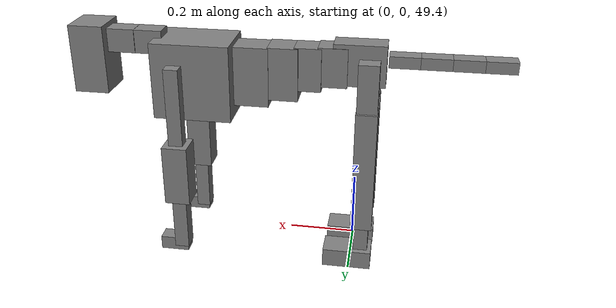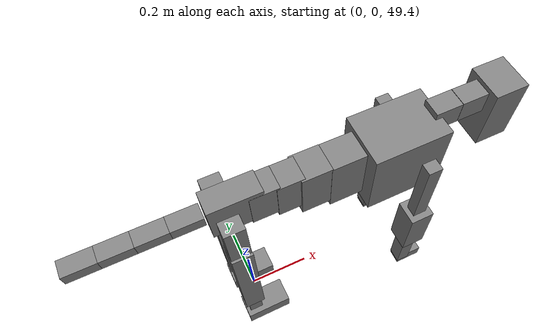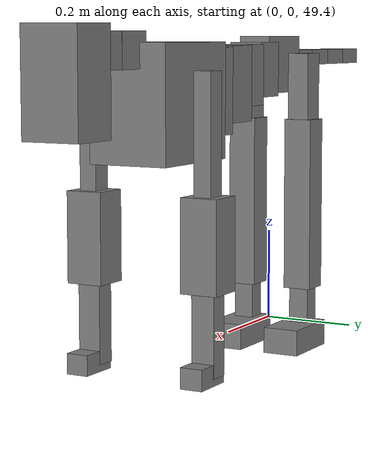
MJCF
<mujoco model="dog">

    <default>
        <joint armature="0.02" stiffness="1" damping="0.2" limited="true"/>
        <geom condim="3" friction="1 0.05 0.05" margin="0.01"/>
        <motor ctrllimited="true" ctrlrange="-1.0 1.0" forcelimited="true" gear="50"/>
    </default>

    <compiler inertiafromgeom="true" angle="radian"/>

    <option timestep="0.016" iterations="50" tolerance="1e-10" solver="Newton" jacobian="dense" cone="pyramidal"/>

    <size nconmax="20000" njmax="60000" nstack="5000000"/>
    <visual>
        <map force="0.1" zfar="30"/>
        <rgba haze="0.15 0.25 0.35 1"/>
        <quality shadowsize="2048"/>
        <global offwidth="800" offheight="800"/>
    </visual>

    <asset>
        <texture type="skybox" builtin="gradient" rgb1="0.3 0.5 0.7" rgb2="0 0 0" width="512" height="512"/>
        <texture name="texplane" type="2d" builtin="checker" rgb1=".2 .3 .4" rgb2=".1 0.15 0.2" width="512" height="512"
                 mark="cross" markrgb=".8 .8 .8"/>
        <texture name="texgeom" type="cube" builtin="flat" mark="cross" width="127" height="1278" rgb1="0.8 0.6 0.4"
                 rgb2="0.8 0.6 0.4" markrgb="1 1 1" random="0.01"/>

        <material name="matplane" reflectance="0.3" texture="texplane" texrepeat="1 1" texuniform="true"/>
        <material name="matgeom" texture="texgeom" texuniform="true" rgba="0.8 0.6 .4 1"/>
    </asset>

    <worldbody>
        <geom name="floor" pos="0 0 0" size="0 0 .25" type="plane" material="matplane" condim="3"/>

        <light directional="false" diffuse=".2 .2 .2" specular="0 0 0" pos="0 0 5" dir="0 0 -1" castshadow="false"/>
        <light mode="targetbodycom" target="torso" directional="false" diffuse=".8 .8 .8" specular="0.3 0.3 0.3"
               pos="0 0 4.0" dir="0 0 -1"/>

        <body name="root" pos="0 0 50">
            <freejoint name="root_1"/>
            <geom type="box" pos="0 0 -0.02" size="0.0774  0.0358  0.063" density="2030"/>

            <body name="spine1" pos="0.054 0 0">
                <joint name="spine1_y" axis="0 1 0" range="0 0.7" limited="true"/>
                <geom type="box" pos="0.02375 0 -0.03" size="0.04375  0.0375  0.05985" density="2030"/>

                <body name="spine2" pos="0.0612 0 0">
                    <joint name="spine2_y" axis="0 1 0" range="-0.15 0.15" limited="true"/>
                    <geom type="box" pos="0.03555  0  -0.04" size="0.04055  0.039  0.06615" density="2030"/>

                    <body name="spine3" pos="0.0730 0 0">
                        <joint name="spine3_y" axis="0 1 0" range="-0.15 0.15" limited="true"/>
                        <geom type="box" pos="0.03555  0  -0.057" size="0.04555  0.0445  0.081" density="2030"/>

                        <body name="spine4" pos="0.0780 0 0">
                            <joint name="spine4_y" axis="0 1 0" range="-0.15 0.15" limited="true"/>
                            <geom type="box" pos="0.05265  0  -0.07" size="0.05265  0.045  0.09135" density="2030"/>

                            <body name="torso" pos="0.1082 0 0">
                                <joint name="torso_y" axis="0 1 0" range="-0.15 0.15" limited="true"/>
                                <geom type="box" pos="0.11925  0  -0.085" size="0.11925  0.085  0.11745"
                                      density="2030"/>

                                <body name="neck1" pos="0.2160  0   0.0180">
                                    <joint name="neck1_y" axis="0 1 0" range="-1.2  -1" limited="true"/>
                                    <geom type="box" pos="0.0423  0  0" size="0.0423  0.03  0.036" density="2325"/>

                                    <body name="neck2" pos="0.0853  0  0">
                                        <joint name="neck2_y" axis="0 1 0" range="0.1  0" limited="true"/>
                                        <geom type="box" pos="0.0423  0  0" size="0.0423  0.03  0.036" density="2325"/>

                                        <body name="head" pos="0.0853  0  0">
                                            <joint name="head_y" axis="0 1 0" range="-0.3  -0.2" limited="true"/>
                                            <geom type="box" pos="0.0531  0  -0.055" size="0.0531  0.06  0.1044"
                                                  density="4030"/>

                                        </body>
                                    </body>
                                </body>

                                <body name="front_shoulder" pos="0.156  0   -0.0480">
                                    <joint name="front_shoulder_y" axis="0 1 0" range="-1 1.5" limited="true"/>
                                    <geom type="box" pos="0 0.13 -0.1070" size="0.0217  0.0185  0.1337" density="1158"/>
                                    <geom type="box" pos="0 -0.13 -0.1070" size="0.0217  0.0185  0.1337"
                                          density="1158"/>

                                    <body name="front_elbow" pos="0  0  -0.2141">
                                        <joint name="front_elbow_y" axis="0 1 0" range="-2 0" limited="true"/>
                                        <geom type="box" pos="0 0.13 -0.0933" size="0.0383  0.0392  0.0933"
                                              density="1081"/>
                                        <geom type="box" pos="0 -0.13 -0.0933" size="0.0383  0.0392  0.0933"
                                              density="1081"/>

                                        <body name="front_wrist" pos="0  0  -0.1866">
                                            <joint name="front_wrist_y" axis="0 1 0" range="-0.2 0" limited="true"/>
                                            <geom type="box" pos="0 0.13 -0.0756" size="0.0218  0.0242  0.0888"
                                                  density="1664"/>
                                            <geom type="box" pos="0 -0.13 -0.0756" size="0.0218  0.0242  0.0888"
                                                  density="1664"/>

                                            <body name="front_finger_end" pos="0  0  -0.1512">
                                                <joint name="front_finger_y" axis="0 1 0" range="-0.4 1"
                                                       limited="true"/>
                                                <geom type="box" pos="0.0237  0.13  -0.0061"
                                                      size="0.0435  0.0237  0.0211" density="1515"/>
                                                <geom type="box" pos="0.0237  -0.13  -0.0061"
                                                      size="0.0435  0.0237  0.0211" density="1515"/>

                                            </body>

                                        </body>
                                    </body>
                                </body>

                            </body>
                        </body>
                    </body>
                </body>
            </body>

            <body name="back_hip" pos="-0.03 0 -0.018">
                <joint name="back_hip_y" axis="0 1 0" range="-1.5 0.3" limited="true"/>
                <geom type="box" pos="0 0.07 -0.0704" size="0.0304  0.0239  0.0932" density="1154"/>
                <geom type="box" pos="0 -0.07 -0.0704" size="0.0304  0.0239  0.0932" density="1154"/>

                <body name="back_knee" pos="0  0  -0.1408">
                    <joint name="back_knee_y" axis="0 1 0" range="0 2.8" limited="true"/>
                    <geom type="box" pos="0 0.07 -0.1771" size="0.0322  0.0317  0.1926" density="1227"/>
                    <geom type="box" pos="0 -0.07 -0.1771" size="0.0322  0.0317  0.1926" density="1227"/>

                    <body name="back_ankle" pos="0  0  -0.3542">
                        <joint name="back_ankle_y" axis="0 1 0" range="-2.2 0" limited="true"/>
                        <geom type="box" pos="0 0.07 -0.0547" size="0.0222  0.0222  0.0660" density="1284"/>
                        <geom type="box" pos="0 -0.07 -0.0547" size="0.0222  0.0222  0.0660" density="1284"/>

                        <body name="back_toe_end" pos="0  0  -0.1095">
                            <joint name="back_toe_y" axis="0 1 0" range="-0.4 1" limited="true"/>
                            <geom type="box" pos="0.0407  0.07  -0.0136" size="0.0747  0.0407  0.0286" density="1515"/>
                            <geom type="box" pos="0.0407  -0.07  -0.0136" size="0.0747  0.0407  0.0286" density="1515"/>

                        </body>
                    </body>
                </body>
            </body>

            <body name="tail1" pos="-0.074 0 -0.006">
                <joint name="tail1_y" axis="0 1 0" range="-0.2 0.2" limited="true"/>
                <geom type="box" pos="-0.0536  0  0" size="0.045  0.025  0.0175" density="1587"/>

                <body name="tail2" pos="-0.09 0 0">
                    <joint name="tail2_y" axis="0 1 0" range="-0.2 0.2" limited="true"/>
                    <geom type="box" pos="-0.0536  0  0" size="0.045  0.025  0.0175" density="1587"/>

                    <body name="tail3" pos="-0.09 0 0">
                        <joint name="tail3_y" axis="0 1 0" range="-0.2 0.2" limited="true"/>
                        <geom type="box" pos="-0.0536  0  0" size="0.045  0.025  0.0175" density="1587"/>

                        <body name="tail4" pos="-0.09 0 0">
                            <joint name="tail4_y" axis="0 1 0" range="-0.2 0.2" limited="true"/>
                            <geom type="box" pos="-0.0536  0  0" size="0.045  0.025  0.0175" density="1587"/>

                        </body>
                    </body>
                </body>
            </body>
        </body>
    </worldbody>

    <actuator>
        <motor joint="spine1_y" forcerange="-150 150     "/>
        <motor joint="spine2_y" forcerange="-150 150     "/>
        <motor joint="spine3_y" forcerange="-150 150     "/>
        <motor joint="spine4_y" forcerange="-150 150     "/>
        <motor joint="torso_y" forcerange="-150 150     "/>
        <motor joint="neck1_y" forcerange="-100 100       "/>
        <motor joint="neck2_y" forcerange="-100 100       "/>
        <motor joint="head_y" forcerange="-150 150       "/>
        <motor joint="front_shoulder_y" forcerange="-105.02 118.55"/>
        <motor joint="front_elbow_y" forcerange="-199.67 185.17"/>
        <motor joint="front_wrist_y" forcerange="-67.62 125.90"/>
        <motor joint="front_finger_y" forcerange="-61.00 25.57"/>
        <motor joint="back_hip_y" forcerange="-289.31 228.97"/>
        <motor joint="back_knee_y" forcerange="-378.83 282.58"/>
        <motor joint="back_angle_y" forcerange="-103.07 152.24"/>
        <motor joint="back_toe_y" forcerange="-139.77 106.20"/>
        <motor joint="tail1_y" forcerange="-50 50     "/>
        <motor joint="tail2_y" forcerange="-50 50     "/>
        <motor joint="tail3_y" forcerange="-50 50     "/>
        <motor joint="tail4_y" forcerange="-50 50     "/>
    </actuator>
</mujoco>
